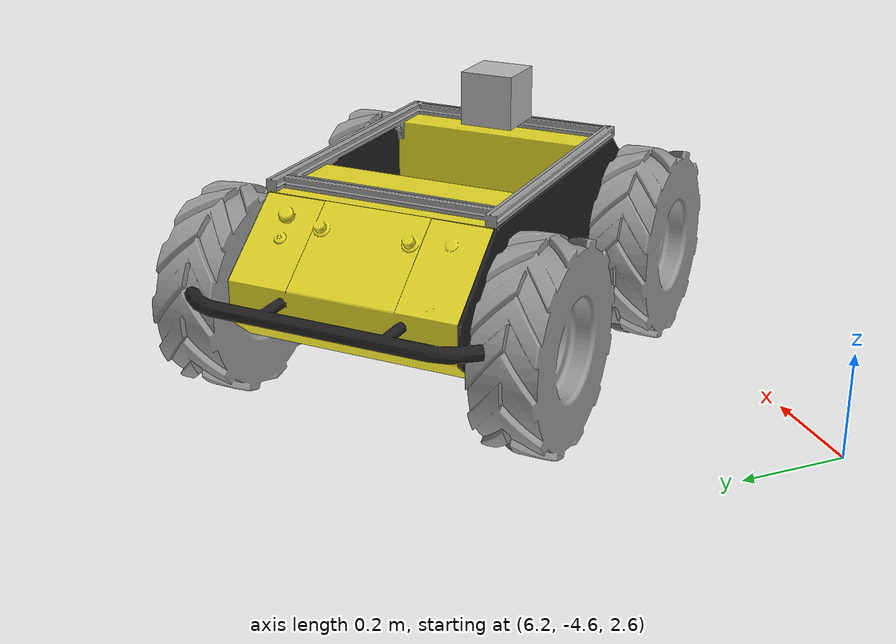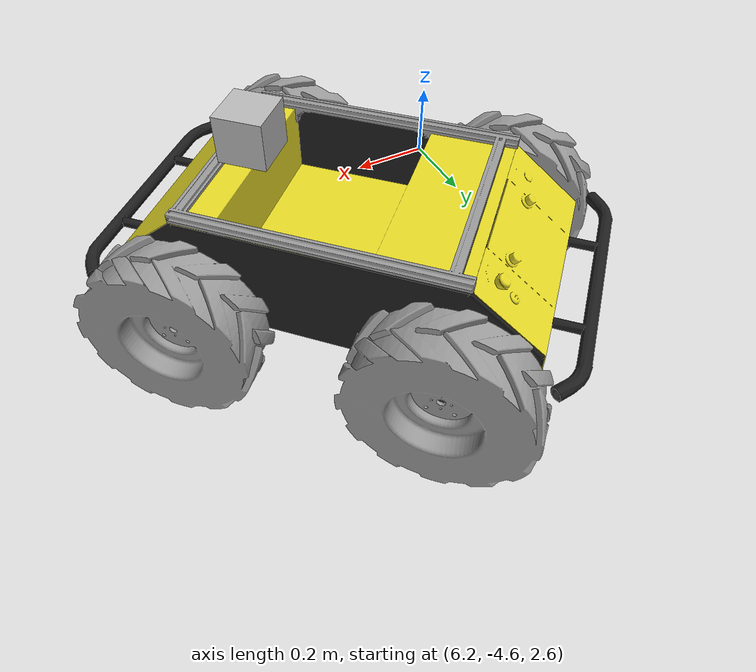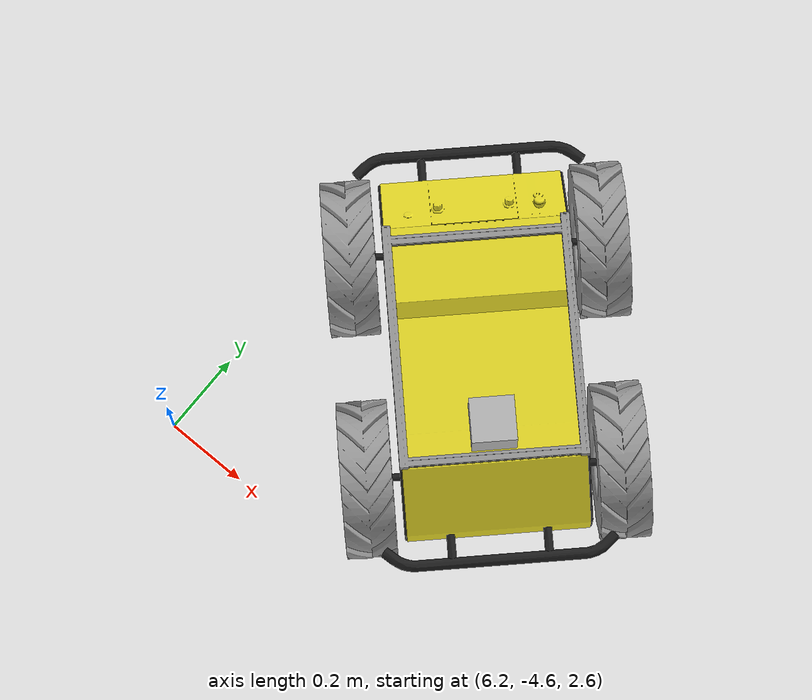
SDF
<sdf version="1.6">
 <world name="default">
  <light name="sun" type="directional">
   <pose>0 0 10 0 -0 0</pose>
   <diffuse>0.8 0.8 0.8 1</diffuse>
   <specular>0.2 0.2 0.2 1</specular>
   <attenuation>
    <range>1000</range>
    <constant>0.9</constant>
    <linear>0.01</linear>
    <quadratic>0.001</quadratic>
   </attenuation>
   <direction>-0.5 0.1 -0.9</direction>
  </light>
  <model name="ground_plane">
   <static>1</static>
   <link name="link">
    <collision name="collision">
     <geometry><plane><normal>0 0 1</normal><size>100 100</size></plane></geometry>
     <surface><friction><ode><mu>100</mu><mu2>50</mu2></ode></friction></surface>
    </collision>
    <visual name="visual">
     <cast_shadows>0</cast_shadows>
     <geometry><plane><normal>0 0 1</normal><size>100 100</size></plane></geometry>
     <material>
      <script><uri>file://media/materials/scripts/gazebo.material</uri><name>Gazebo/Grey</name></script>
     </material>
    </visual>
   </link>
  </model>
  <model name="vehicle">
   <pose>6.10907 -4.18309 1.92987 -0.001875 0.020114 -0.799699</pose>
   <link name="my_husky::base_link">
    <collision name="collision">
     <pose>0 0 0.1 0 -0 0</pose>
     <geometry><box><size>1.0074 0.5709 0.2675</size></box></geometry>
    </collision>
    <inertial>
     <mass>33.855</mass>
     <pose>-0.085613 -0.00084 0.238145 0 -0 0</pose>
     <inertia>
      <ixx>2.2343</ixx>
      <ixy>-0.023642</ixy>
      <ixz>0.275174</ixz>
      <iyy>3.42518</iyy>
      <iyz>0.00239624</iyz>
      <izz>2.1241</izz>
     </inertia>
    </inertial>
    <visual name="base">
     <geometry><mesh><uri>model://husky/meshes/base_link.stl</uri></mesh></geometry>
     <material><script><name>Gazebo/FlatBlack</name><uri>__default__</uri></script></material>
    </visual>
    <visual name="top_plate">
     <geometry><mesh><uri>model://husky/meshes/top_plate.stl</uri></mesh></geometry>
     <material><script><name>Gazebo/Yellow</name><uri>__default__</uri></script></material>
    </visual>
    <visual name="front_bumper">
     <pose>0.47 0 0.091 0 -0 0</pose>
     <geometry><mesh><uri>model://husky/meshes/bumper.stl</uri></mesh></geometry>
     <material><script><name>Gazebo/FlatBlack</name><uri>__default__</uri></script></material>
    </visual>
    <visual name="rear_bumper">
     <pose>-0.47 0 0.091 0 -0 3.141</pose>
     <geometry><mesh><uri>model://husky/meshes/bumper.stl</uri></mesh></geometry>
     <material><script><name>Gazebo/FlatBlack</name><uri>__default__</uri></script></material>
    </visual>
    <visual name="user_rail">
     <pose>0.272 0 0.245 0 -0 0</pose>
     <geometry><mesh><uri>model://husky/meshes/user_rail.stl</uri></mesh></geometry>
     <material><script><name>Gazebo/Grey</name><uri>__default__</uri></script></material>
    </visual>
    <pose>0.3 0.5 0.9 0 -0 0</pose>
   </link>
   <link name="my_husky::back_left_wheel">
    <pose>0.044 0.785475 0.935 0 -0 0</pose>
    <inertial>
     <mass>2.6357</mass>
     <inertia>
      <ixx>0.0246688</ixx>
      <ixy>0</ixy>
      <ixz>0</ixz>
      <iyy>0.0246688</iyy>
      <iyz>0</iyz>
      <izz>0.0441058</izz>
     </inertia>
    </inertial>
    <collision name="back_left_wheel_collision">
     <pose>0 0 0 -1.5707 0 0</pose>
     <geometry><cylinder><radius>0.17775</radius><length>0.1143</length></cylinder></geometry>
     <surface><friction><ode><mu>100</mu><mu2>100</mu2><slip1>0</slip1><slip2>0</slip2></ode></friction></surface>
    </collision>
    <visual name="my_husky::back_left_wheel">
     <pose>0 0 0 -3.14159 0 0</pose>
     <geometry><mesh><uri>model://husky/meshes/wheel.stl</uri></mesh></geometry>
     <material><script><name>Gazebo/Grey</name><uri>__default__</uri></script></material>
    </visual>
   </link>
   <joint name="my_husky::back_left_joint" type="revolute">
    <parent>my_husky::base_link</parent>
    <child>my_husky::back_left_wheel</child>
    <axis>
     <xyz>0 1 0</xyz>
     <use_parent_model_frame>1</use_parent_model_frame>
     <limit><lower>-1e+16</lower><upper>1e+16</upper></limit>
     <dynamics><spring_reference>0</spring_reference><spring_stiffness>0</spring_stiffness></dynamics>
    </axis>
    <physics><ode><limit><cfm>0</cfm><erp>0.9</erp></limit></ode></physics>
   </joint>
   <link name="my_husky::back_right_wheel">
    <pose>0.044 0.214525 0.935 0 -0 0</pose>
    <inertial>
     <mass>2.6357</mass>
     <inertia>
      <ixx>0.0246688</ixx>
      <ixy>0</ixy>
      <ixz>0</ixz>
      <iyy>0.0246688</iyy>
      <iyz>0</iyz>
      <izz>0.0441058</izz>
     </inertia>
    </inertial>
    <collision name="back_right_wheel_collision">
     <pose>0 0 0 -1.5707 0 0</pose>
     <geometry><cylinder><radius>0.17775</radius><length>0.1143</length></cylinder></geometry>
     <surface><friction><ode><mu>100</mu><mu2>100</mu2><slip1>0</slip1><slip2>0</slip2></ode></friction></surface>
    </collision>
    <visual name="my_husky::back_right_wheel">
     <pose>0 0 0 -3.14159 0 0</pose>
     <geometry><mesh><uri>model://husky/meshes/wheel.stl</uri></mesh></geometry>
     <material><script><name>Gazebo/Grey</name><uri>__default__</uri></script></material>
    </visual>
   </link>
   <joint name="my_husky::back_right_joint" type="revolute">
    <parent>my_husky::base_link</parent>
    <child>my_husky::back_right_wheel</child>
    <axis>
     <xyz>0 1 0</xyz>
     <use_parent_model_frame>1</use_parent_model_frame>
     <limit><lower>-1e+16</lower><upper>1e+16</upper></limit>
     <dynamics><spring_reference>0</spring_reference><spring_stiffness>0</spring_stiffness></dynamics>
    </axis>
    <physics><ode><limit><cfm>0</cfm><erp>0.9</erp></limit></ode></physics>
   </joint>
   <link name="my_husky::front_left_wheel">
    <pose>0.556 0.785475 0.935 0 -0 0</pose>
    <inertial>
     <mass>2.6357</mass>
     <inertia>
      <ixx>0.0246688</ixx>
      <ixy>0</ixy>
      <ixz>0</ixz>
      <iyy>0.0246688</iyy>
      <iyz>0</iyz>
      <izz>0.0441058</izz>
     </inertia>
    </inertial>
    <collision name="front_left_wheel_collision">
     <pose>0 0 0 -1.5707 0 0</pose>
     <geometry><cylinder><radius>0.17775</radius><length>0.1143</length></cylinder></geometry>
     <surface><friction><ode><mu>100</mu><mu2>100</mu2><slip1>0</slip1><slip2>0</slip2></ode></friction></surface>
    </collision>
    <visual name="my_husky::front_left_wheel">
     <pose>0 0 0 -3.14159 0 0</pose>
     <geometry><mesh><uri>model://husky/meshes/wheel.stl</uri></mesh></geometry>
     <material><script><name>Gazebo/Grey</name><uri>__default__</uri></script></material>
    </visual>
   </link>
   <joint name="my_husky::front_left_joint" type="revolute">
    <parent>my_husky::base_link</parent>
    <child>my_husky::front_left_wheel</child>
    <axis>
     <xyz>0 1 0</xyz>
     <use_parent_model_frame>1</use_parent_model_frame>
     <limit><lower>-1e+16</lower><upper>1e+16</upper></limit>
     <dynamics><spring_reference>0</spring_reference><spring_stiffness>0</spring_stiffness></dynamics>
    </axis>
    <physics><ode><limit><cfm>0</cfm><erp>0.9</erp></limit></ode></physics>
   </joint>
   <link name="my_husky::front_right_wheel">
    <pose>0.556 0.214525 0.935 0 -0 0</pose>
    <inertial>
     <mass>2.6357</mass>
     <inertia>
      <ixx>0.0246688</ixx>
      <ixy>0</ixy>
      <ixz>0</ixz>
      <iyy>0.0246688</iyy>
      <iyz>0</iyz>
      <izz>0.0441058</izz>
     </inertia>
    </inertial>
    <collision name="front_right_wheel_collision">
     <pose>0 0 0 -1.5707 0 0</pose>
     <geometry><cylinder><radius>0.17775</radius><length>0.1143</length></cylinder></geometry>
     <surface><friction><ode><mu>100</mu><mu2>100</mu2><slip1>0</slip1><slip2>0</slip2></ode></friction></surface>
    </collision>
    <visual name="my_husky::front_right_wheel">
     <pose>0 0 0 -3.14159 0 0</pose>
     <geometry><mesh><uri>model://husky/meshes/wheel.stl</uri></mesh></geometry>
     <material><script><name>Gazebo/Grey</name><uri>__default__</uri></script></material>
    </visual>
   </link>
   <joint name="my_husky::front_right_joint" type="revolute">
    <parent>my_husky::base_link</parent>
    <child>my_husky::front_right_wheel</child>
    <axis>
     <xyz>0 1 0</xyz>
     <use_parent_model_frame>1</use_parent_model_frame>
     <limit><lower>-1e+16</lower><upper>1e+16</upper></limit>
     <dynamics><spring_reference>0</spring_reference><spring_stiffness>0</spring_stiffness></dynamics>
    </axis>
    <physics><ode><limit><cfm>0</cfm><erp>0.9</erp></limit></ode></physics>
   </joint>
   <link name="my_husky::cam_link">
    <pose>0.5 0.5 1.2 0 -0 0</pose>
    <visual name="this_cam"><geometry><box><size>0.1 0.1 0.1</size></box></geometry></visual>
    <sensor name="camera1" type="camera">
     <update_rate>30</update_rate>
     <camera name="head">
      <horizontal_fov>1.39626</horizontal_fov>
      <image><width>800</width><height>800</height><format>R8G8B8</format></image>
      <clip><near>0.02</near><far>300</far></clip>
      <noise><type>gaussian</type><mean>0</mean><stddev>0.007</stddev></noise>
     </camera>
     <visualize>1</visualize>
     <plugin name="camera_controller" filename="libgazebo_ros_camera.so">
      <alwaysOn>1</alwaysOn>
      <updateRate>0.0</updateRate>
      <cameraName>my_husky/camera1</cameraName>
      <imageTopicName>image_raw</imageTopicName>
      <cameraInfoTopicName>camera_info</cameraInfoTopicName>
      <frameName>my_husky::cam_link</frameName>
      <hackBaseline>0.07</hackBaseline>
      <distortionK1>0.0</distortionK1>
      <distortionK2>0.0</distortionK2>
      <distortionK3>0.0</distortionK3>
      <distortionT1>0.0</distortionT1>
      <distortionT2>0.0</distortionT2>
     </plugin>
    </sensor>
    <inertial>
     <inertia><ixx>1</ixx><ixy>0</ixy><ixz>0</ixz><iyy>1</iyy><iyz>0</iyz><izz>1</izz></inertia>
     <mass>1</mass>
    </inertial>
   </link>
   <joint name="my_husky::mycam_joint" type="fixed">
    <parent>my_husky::base_link</parent>
    <child>my_husky::cam_link</child>
   </joint>
   <plugin name="skid_steer_drive_controller" filename="libgazebo_ros_skid_steer_drive.so">
    <updateRate>100.0</updateRate>
    <robotNamespace>/my_husky</robotNamespace>
    <leftFrontJoint>my_husky::front_left_joint</leftFrontJoint>
    <rightFrontJoint>my_husky::front_right_joint</rightFrontJoint>
    <leftRearJoint>my_husky::back_left_joint</leftRearJoint>
    <rightRearJoint>my_husky::back_right_joint</rightRearJoint>
    <wheelSeparation>0.5709</wheelSeparation>
    <wheelDiameter>0.3555</wheelDiameter>
    <robotBaseFrame>my_husky::cam_link</robotBaseFrame>
    <torque>100</torque>
    <topicName>cmd_vel</topicName>
    <commandTopic>cmd_vel</commandTopic>
    <broadcastTF>1</broadcastTF>
   </plugin>
  </model>
  <gravity>0 0 -9.8</gravity>
  <magnetic_field>6e-06 2.3e-05 -4.2e-05</magnetic_field>
  <atmosphere type="adiabatic"/>
  <physics name="default_physics" default="0" type="ode">
   <max_step_size>0.001</max_step_size>
   <real_time_factor>1</real_time_factor>
   <real_time_update_rate>1000</real_time_update_rate>
  </physics>
  <scene><ambient>0.4 0.4 0.4 1</ambient><background>0.7 0.7 0.7 1</background><shadows>1</shadows></scene>
  <spherical_coordinates>
   <surface_model>EARTH_WGS84</surface_model>
   <latitude_deg>0</latitude_deg>
   <longitude_deg>0</longitude_deg>
   <elevation>0</elevation>
   <heading_deg>0</heading_deg>
  </spherical_coordinates>
 </world>
</sdf>
